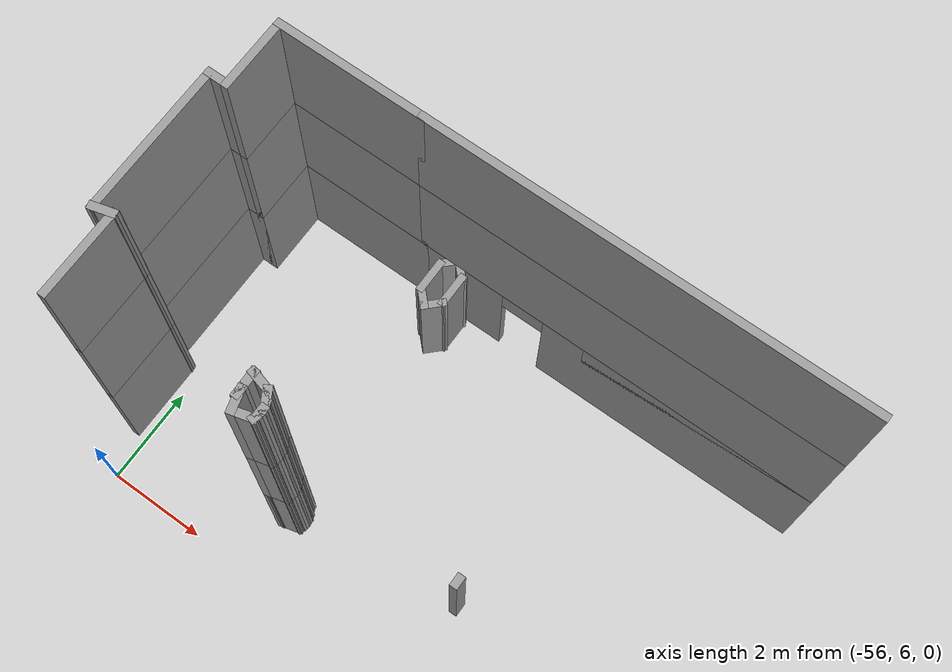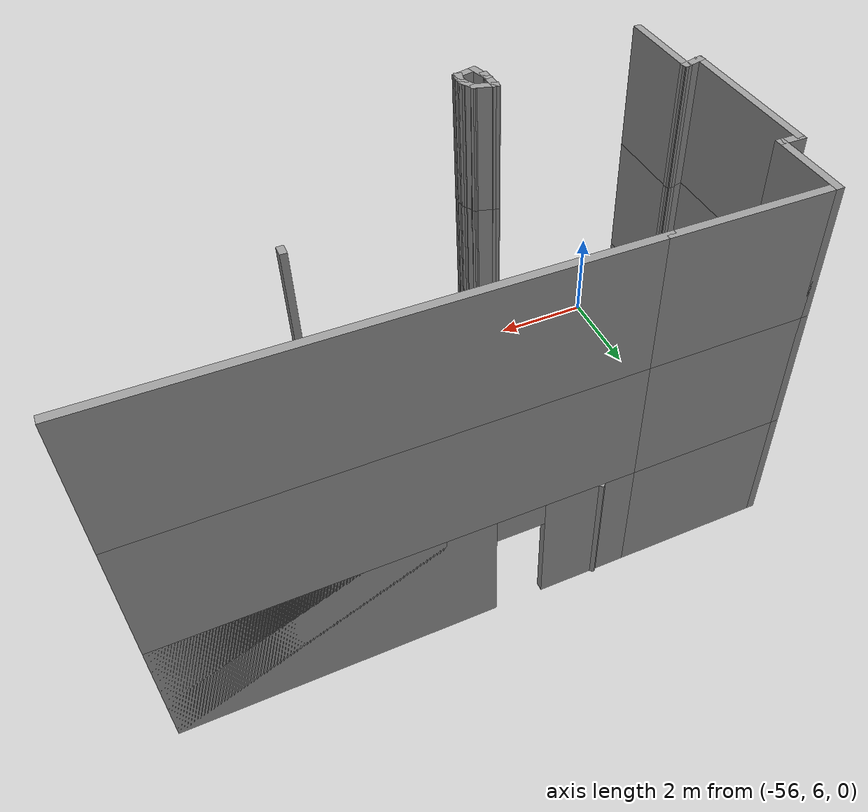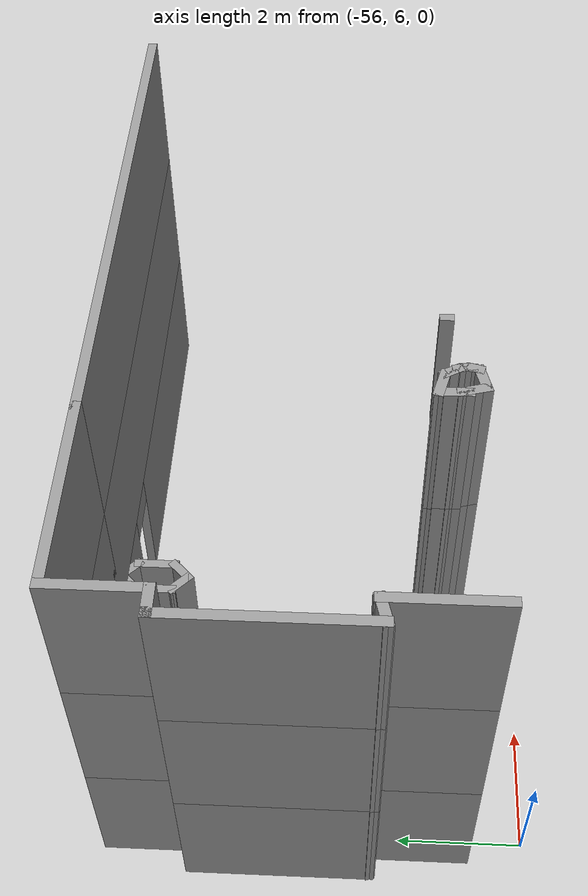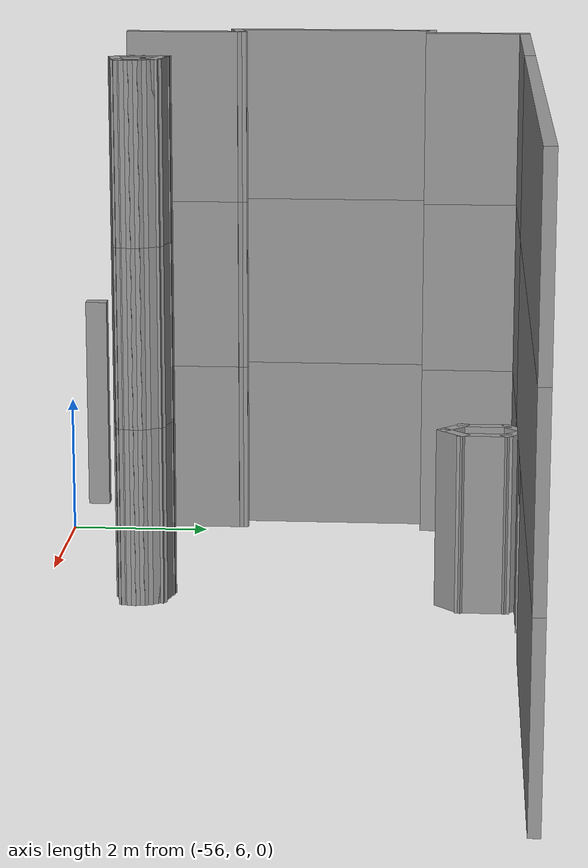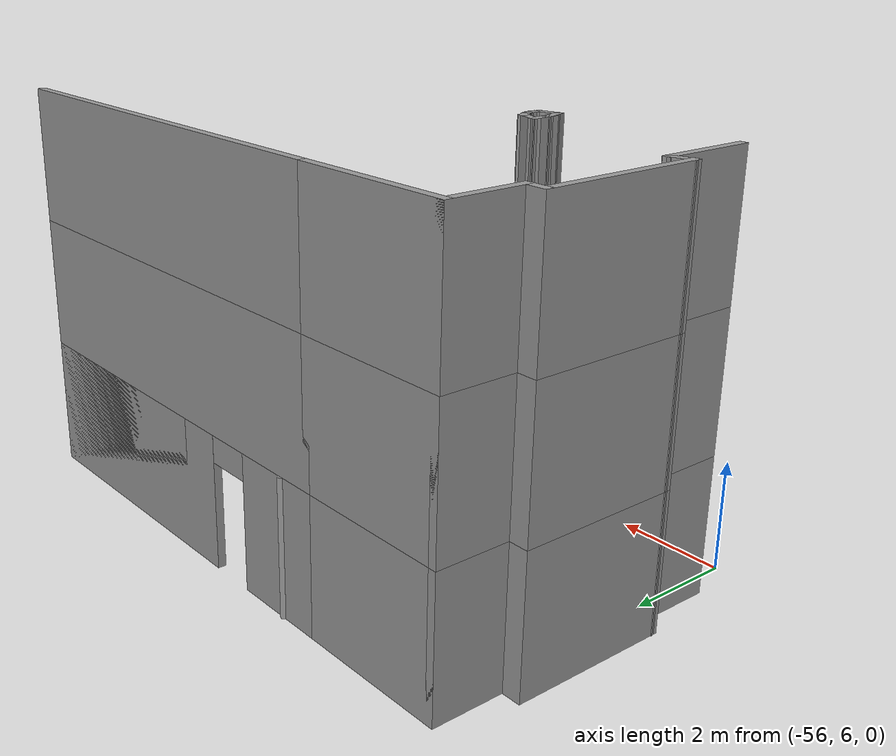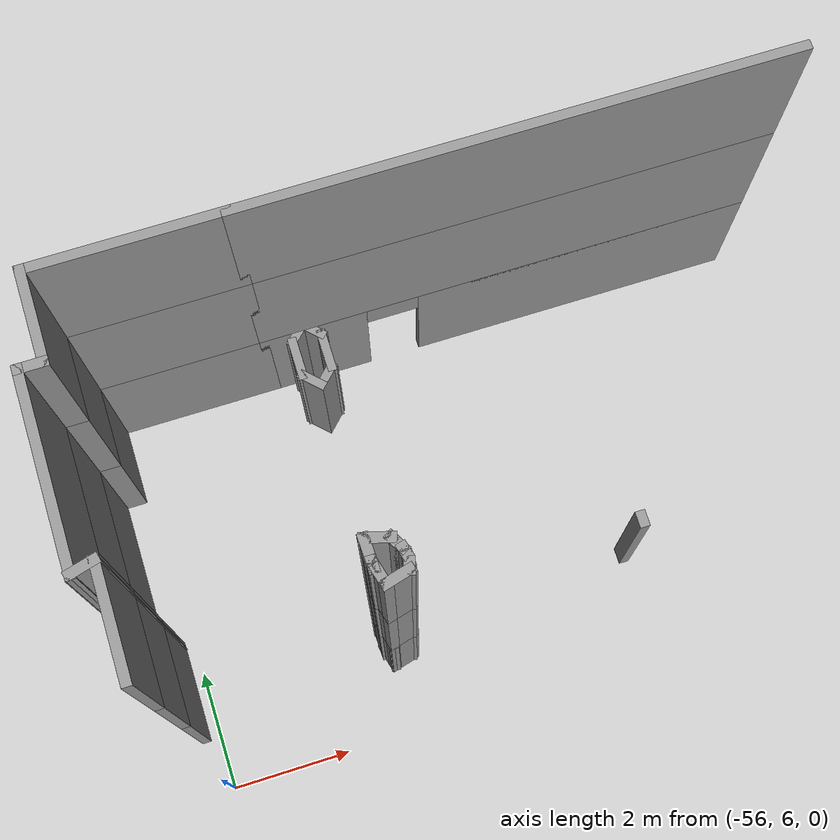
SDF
<sdf version="1.7">
 <model name="mapagazebo">
  <pose>-4.67869 9.01252 0 0 -0 0</pose>
  <link name="Wall_1011">
   <collision name="Wall_1011_Collision">
    <geometry><box><size>0.25 0.15 2.5</size></box></geometry>
    <pose>0 0 1.25 0 -0 0</pose>
   </collision>
   <visual name="Wall_1011_Visual">
    <pose>0 0 1.25 0 -0 0</pose>
    <geometry><box><size>0.25 0.15 2.5</size></box></geometry>
    <material>
     <script><uri>file://media/materials/scripts/gazebo.material</uri><name>Gazebo/Grey</name></script>
     <ambient>1 1 1 1</ambient>
    </material>
    <meta><layer>1</layer></meta>
   </visual>
   <pose>-44.2708 -1.57979 2.5 0 -0 1.5708</pose>
  </link>
  <link name="Wall_1027">
   <collision name="Wall_1027_Collision">
    <geometry><box><size>0.25 0.15 2.5</size></box></geometry>
    <pose>0 0 1.25 0 -0 0</pose>
   </collision>
   <visual name="Wall_1027_Visual">
    <pose>0 0 1.25 0 -0 0</pose>
    <geometry><box><size>0.25 0.15 2.5</size></box></geometry>
    <material>
     <script><uri>file://media/materials/scripts/gazebo.material</uri><name>Gazebo/Grey</name></script>
     <ambient>1 1 1 1</ambient>
    </material>
    <meta><layer>1</layer></meta>
   </visual>
   <pose>-48.2394 -1.57255 2.5 0 -0 1.5708</pose>
  </link>
  <link name="Wall_1028">
   <collision name="Wall_1028_Collision">
    <geometry><box><size>0.25 0.15 2.5</size></box></geometry>
    <pose>0 0 1.25 0 -0 0</pose>
   </collision>
   <visual name="Wall_1028_Visual">
    <pose>0 0 1.25 0 -0 0</pose>
    <geometry><box><size>0.25 0.15 2.5</size></box></geometry>
    <material>
     <script><uri>file://media/materials/scripts/gazebo.material</uri><name>Gazebo/Grey</name></script>
     <ambient>1 1 1 1</ambient>
    </material>
    <meta><layer>1</layer></meta>
   </visual>
   <pose>-48.2394 -1.57255 2.5 0 -0 -1.5708</pose>
  </link>
  <link name="Wall_1029">
   <collision name="Wall_1029_Collision">
    <geometry><box><size>0.25 0.15 2.5</size></box></geometry>
    <pose>0 0 1.25 0 -0 0</pose>
   </collision>
   <visual name="Wall_1029_Visual">
    <pose>0 0 1.25 0 -0 0</pose>
    <geometry><box><size>0.25 0.15 2.5</size></box></geometry>
    <material>
     <script><uri>file://media/materials/scripts/gazebo.material</uri><name>Gazebo/Grey</name></script>
     <ambient>1 1 1 1</ambient>
    </material>
    <meta><layer>1</layer></meta>
   </visual>
   <pose>-48.2394 -1.57255 2.5 0 -0 1.5708</pose>
  </link>
  <link name="Wall_1030">
   <collision name="Wall_1030_Collision">
    <geometry><box><size>0.25 0.15 2.5</size></box></geometry>
    <pose>0 0 1.25 0 -0 0</pose>
   </collision>
   <visual name="Wall_1030_Visual">
    <pose>0 0 1.25 0 -0 0</pose>
    <geometry><box><size>0.25 0.15 2.5</size></box></geometry>
    <material>
     <script><uri>file://media/materials/scripts/gazebo.material</uri><name>Gazebo/Grey</name></script>
     <ambient>1 1 1 1</ambient>
    </material>
    <meta><layer>1</layer></meta>
   </visual>
   <pose>-48.2394 -1.57255 2.5 0 -0 -1.5708</pose>
  </link>
  <link name="Wall_1031">
   <collision name="Wall_1031_Collision">
    <geometry><box><size>0.25 0.15 2.5</size></box></geometry>
    <pose>0 0 1.25 0 -0 0</pose>
   </collision>
   <visual name="Wall_1031_Visual">
    <pose>0 0 1.25 0 -0 0</pose>
    <geometry><box><size>0.25 0.15 2.5</size></box></geometry>
    <material>
     <script><uri>file://media/materials/scripts/gazebo.material</uri><name>Gazebo/Grey</name></script>
     <ambient>1 1 1 1</ambient>
    </material>
    <meta><layer>1</layer></meta>
   </visual>
   <pose>-48.2394 -1.57255 2.5 0 -0 1.5708</pose>
  </link>
  <link name="Wall_1032">
   <collision name="Wall_1032_Collision">
    <geometry><box><size>0.25 0.15 2.5</size></box></geometry>
    <pose>0 0 1.25 0 -0 0</pose>
   </collision>
   <visual name="Wall_1032_Visual">
    <pose>0 0 1.25 0 -0 0</pose>
    <geometry><box><size>0.25 0.15 2.5</size></box></geometry>
    <material>
     <script><uri>file://media/materials/scripts/gazebo.material</uri><name>Gazebo/Grey</name></script>
     <ambient>1 1 1 1</ambient>
    </material>
    <meta><layer>1</layer></meta>
   </visual>
   <pose>-48.2394 -1.57255 2.5 0 -0 -1.5708</pose>
  </link>
  <link name="Wall_1033">
   <collision name="Wall_1033_Collision">
    <geometry><box><size>0.25 0.15 2.5</size></box></geometry>
    <pose>0 0 1.25 0 -0 0</pose>
   </collision>
   <visual name="Wall_1033_Visual">
    <pose>0 0 1.25 0 -0 0</pose>
    <geometry><box><size>0.25 0.15 2.5</size></box></geometry>
    <material>
     <script><uri>file://media/materials/scripts/gazebo.material</uri><name>Gazebo/Grey</name></script>
     <ambient>1 1 1 1</ambient>
    </material>
    <meta><layer>1</layer></meta>
   </visual>
   <pose>-48.2394 -1.57255 2.5 0 -0 1.5708</pose>
  </link>
  <link name="Wall_1034">
   <collision name="Wall_1034_Collision">
    <geometry><box><size>0.25 0.15 2.5</size></box></geometry>
    <pose>0 0 1.25 0 -0 0</pose>
   </collision>
   <visual name="Wall_1034_Visual">
    <pose>0 0 1.25 0 -0 0</pose>
    <geometry><box><size>0.25 0.15 2.5</size></box></geometry>
    <material>
     <script><uri>file://media/materials/scripts/gazebo.material</uri><name>Gazebo/Grey</name></script>
     <ambient>1 1 1 1</ambient>
    </material>
    <meta><layer>1</layer></meta>
   </visual>
   <pose>-48.2394 -1.57255 2.5 0 -0 -1.5708</pose>
  </link>
  <link name="Wall_1035">
   <collision name="Wall_1035_Collision">
    <geometry><box><size>0.5 0.15 2.5</size></box></geometry>
    <pose>0 0 1.25 0 -0 0</pose>
   </collision>
   <visual name="Wall_1035_Visual">
    <pose>0 0 1.25 0 -0 0</pose>
    <geometry><box><size>0.5 0.15 2.5</size></box></geometry>
    <material>
     <script><uri>file://media/materials/scripts/gazebo.material</uri><name>Gazebo/Grey</name></script>
     <ambient>1 1 1 1</ambient>
    </material>
    <meta><layer>1</layer></meta>
   </visual>
   <pose>-48.1941 -1.69159 2.5 0 -0 -1.309</pose>
  </link>
  <link name="Wall_1037">
   <collision name="Wall_1037_Collision">
    <geometry><box><size>0.5 0.15 2.5</size></box></geometry>
    <pose>0 0 1.25 0 -0 0</pose>
   </collision>
   <visual name="Wall_1037_Visual">
    <pose>0 0 1.25 0 -0 0</pose>
    <geometry><box><size>0.5 0.15 2.5</size></box></geometry>
    <material>
     <script><uri>file://media/materials/scripts/gazebo.material</uri><name>Gazebo/Grey</name></script>
     <ambient>1 1 1 1</ambient>
    </material>
    <meta><layer>1</layer></meta>
   </visual>
   <pose>-47.9798 -1.81533 2.5 0 -0 0.261799</pose>
  </link>
  <link name="Wall_1038">
   <collision name="Wall_1038_Collision">
    <geometry><box><size>0.25 0.15 2.5</size></box></geometry>
    <pose>0 0 1.25 0 -0 0</pose>
   </collision>
   <visual name="Wall_1038_Visual">
    <pose>0 0 1.25 0 -0 0</pose>
    <geometry><box><size>0.25 0.15 2.5</size></box></geometry>
    <material>
     <script><uri>file://media/materials/scripts/gazebo.material</uri><name>Gazebo/Grey</name></script>
     <ambient>1 1 1 1</ambient>
    </material>
    <meta><layer>1</layer></meta>
   </visual>
   <pose>-47.7978 -1.72174 2.5 0 -0 1.309</pose>
  </link>
  <link name="Wall_1039">
   <collision name="Wall_1039_Collision">
    <geometry><box><size>0.25 0.15 2.5</size></box></geometry>
    <pose>0 0 1.25 0 -0 0</pose>
   </collision>
   <visual name="Wall_1039_Visual">
    <pose>0 0 1.25 0 -0 0</pose>
    <geometry><box><size>0.25 0.15 2.5</size></box></geometry>
    <material>
     <script><uri>file://media/materials/scripts/gazebo.material</uri><name>Gazebo/Grey</name></script>
     <ambient>1 1 1 1</ambient>
    </material>
    <meta><layer>1</layer></meta>
   </visual>
   <pose>-47.7848 -1.62344 2.5 0 -0 1.5708</pose>
  </link>
  <link name="Wall_1040">
   <collision name="Wall_1040_Collision">
    <geometry><box><size>0.25 0.15 2.5</size></box></geometry>
    <pose>0 0 1.25 0 -0 0</pose>
   </collision>
   <visual name="Wall_1040_Visual">
    <pose>0 0 1.25 0 -0 0</pose>
    <geometry><box><size>0.25 0.15 2.5</size></box></geometry>
    <material>
     <script><uri>file://media/materials/scripts/gazebo.material</uri><name>Gazebo/Grey</name></script>
     <ambient>1 1 1 1</ambient>
    </material>
    <meta><layer>1</layer></meta>
   </visual>
   <pose>-47.7978 -1.52515 2.5 0 -0 1.8326</pose>
  </link>
  <link name="Wall_1041">
   <collision name="Wall_1041_Collision">
    <geometry><box><size>0.25 0.15 2.5</size></box></geometry>
    <pose>0 0 1.25 0 -0 0</pose>
   </collision>
   <visual name="Wall_1041_Visual">
    <pose>0 0 1.25 0 -0 0</pose>
    <geometry><box><size>0.25 0.15 2.5</size></box></geometry>
    <material>
     <script><uri>file://media/materials/scripts/gazebo.material</uri><name>Gazebo/Grey</name></script>
     <ambient>1 1 1 1</ambient>
    </material>
    <meta><layer>1</layer></meta>
   </visual>
   <pose>-47.8357 -1.43355 2.5 0 -0 2.0944</pose>
  </link>
  <link name="Wall_1042">
   <collision name="Wall_1042_Collision">
    <geometry><box><size>0.25 0.15 2.5</size></box></geometry>
    <pose>0 0 1.25 0 -0 0</pose>
   </collision>
   <visual name="Wall_1042_Visual">
    <pose>0 0 1.25 0 -0 0</pose>
    <geometry><box><size>0.25 0.15 2.5</size></box></geometry>
    <material>
     <script><uri>file://media/materials/scripts/gazebo.material</uri><name>Gazebo/Grey</name></script>
     <ambient>1 1 1 1</ambient>
    </material>
    <meta><layer>1</layer></meta>
   </visual>
   <pose>-47.8857 -1.34695 2.5 0 -0 2.0944</pose>
  </link>
  <link name="Wall_1043">
   <collision name="Wall_1043_Collision">
    <geometry><box><size>0.5 0.15 2.5</size></box></geometry>
    <pose>0 0 1.25 0 -0 0</pose>
   </collision>
   <visual name="Wall_1043_Visual">
    <pose>0 0 1.25 0 -0 0</pose>
    <geometry><box><size>0.5 0.15 2.5</size></box></geometry>
    <material>
     <script><uri>file://media/materials/scripts/gazebo.material</uri><name>Gazebo/Grey</name></script>
     <ambient>1 1 1 1</ambient>
    </material>
    <meta><layer>1</layer></meta>
   </visual>
   <pose>-48.0798 -1.25835 2.5 0 -0 2.87979</pose>
  </link>
  <link name="Wall_1044">
   <collision name="Wall_1044_Collision">
    <geometry><box><size>0.459633 0.15 2.5</size></box></geometry>
    <pose>0 0 1.25 0 -0 0</pose>
   </collision>
   <visual name="Wall_1044_Visual">
    <pose>0 0 1.25 0 -0 0</pose>
    <geometry><box><size>0.459633 0.15 2.5</size></box></geometry>
    <material>
     <script><uri>file://media/materials/scripts/gazebo.material</uri><name>Gazebo/Grey</name></script>
     <ambient>1 1 1 1</ambient>
    </material>
    <meta><layer>1</layer></meta>
   </visual>
   <pose>-48.2441 -1.3678 2.5 0 -0 -1.54039</pose>
  </link>
  <link name="Wall_113">
   <collision name="Wall_113_Collision">
    <geometry><box><size>1.75 0.15 2.5</size></box></geometry>
    <pose>0 0 1.25 0 -0 0</pose>
   </collision>
   <visual name="Wall_113_Visual">
    <pose>0 0 1.25 0 -0 0</pose>
    <geometry><box><size>1.75 0.15 2.5</size></box></geometry>
    <material>
     <script><uri>file://media/materials/scripts/gazebo.material</uri><name>Gazebo/Grey</name></script>
     <ambient>1 1 1 1</ambient>
    </material>
    <meta><layer>0</layer></meta>
   </visual>
   <pose>-51.5749 -1.26611 0 0 -0 1.5708</pose>
  </link>
  <link name="Wall_114">
   <collision name="Wall_114_Collision">
    <geometry><box><size>0.5 0.15 2.5</size></box></geometry>
    <pose>0 0 1.25 0 -0 0</pose>
   </collision>
   <visual name="Wall_114_Visual">
    <pose>0 0 1.25 0 -0 0</pose>
    <geometry><box><size>0.5 0.15 2.5</size></box></geometry>
    <material>
     <script><uri>file://media/materials/scripts/gazebo.material</uri><name>Gazebo/Grey</name></script>
     <ambient>1 1 1 1</ambient>
    </material>
    <meta><layer>0</layer></meta>
   </visual>
   <pose>-51.7439 -0.511398 0 0 -0 -2.87979</pose>
  </link>
  <link name="Wall_115">
   <collision name="Wall_115_Collision">
    <geometry><box><size>3 0.15 2.5</size></box></geometry>
    <pose>0 0 1.25 0 -0 0</pose>
   </collision>
   <visual name="Wall_115_Visual">
    <pose>0 0 1.25 0 -0 0</pose>
    <geometry><box><size>3 0.15 2.5</size></box></geometry>
    <material>
     <script><uri>file://media/materials/scripts/gazebo.material</uri><name>Gazebo/Grey</name></script>
     <ambient>1 1 1 1</ambient>
    </material>
    <meta><layer>0</layer></meta>
   </visual>
   <pose>-51.9129 0.868308 0 0 -0 1.5708</pose>
  </link>
  <link name="Wall_116">
   <collision name="Wall_116_Collision">
    <geometry><box><size>0.5 0.15 2.5</size></box></geometry>
    <pose>0 0 1.25 0 -0 0</pose>
   </collision>
   <visual name="Wall_116_Visual">
    <pose>0 0 1.25 0 -0 0</pose>
    <geometry><box><size>0.5 0.15 2.5</size></box></geometry>
    <material>
     <script><uri>file://media/materials/scripts/gazebo.material</uri><name>Gazebo/Grey</name></script>
     <ambient>1 1 1 1</ambient>
    </material>
    <meta><layer>0</layer></meta>
   </visual>
   <pose>-51.7379 2.29331 0 0 -0 0</pose>
  </link>
  <link name="Wall_117">
   <collision name="Wall_117_Collision">
    <geometry><box><size>1.5 0.15 2.5</size></box></geometry>
    <pose>0 0 1.25 0 -0 0</pose>
   </collision>
   <visual name="Wall_117_Visual">
    <pose>0 0 1.25 0 -0 0</pose>
    <geometry><box><size>1.5 0.15 2.5</size></box></geometry>
    <material>
     <script><uri>file://media/materials/scripts/gazebo.material</uri><name>Gazebo/Grey</name></script>
     <ambient>1 1 1 1</ambient>
    </material>
    <meta><layer>0</layer></meta>
   </visual>
   <pose>-51.5629 2.96831 0 0 -0 1.5708</pose>
  </link>
  <link name="Wall_118">
   <collision name="Wall_118_Collision">
    <geometry><box><size>3 0.15 2.5</size></box></geometry>
    <pose>0 0 1.25 0 -0 0</pose>
   </collision>
   <visual name="Wall_118_Visual">
    <pose>0 0 1.25 0 -0 0</pose>
    <geometry><box><size>3 0.15 2.5</size></box></geometry>
    <material>
     <script><uri>file://media/materials/scripts/gazebo.material</uri><name>Gazebo/Grey</name></script>
     <ambient>1 1 1 1</ambient>
    </material>
    <meta><layer>0</layer></meta>
   </visual>
   <pose>-50.1379 3.64331 0 0 -0 0</pose>
  </link>
  <link name="Wall_119">
   <pose>-44.5379 3.64331 0 0 -0 0</pose>
   <visual name="Wall_119_Visual_0">
    <pose>-3.32413 0 1.25 0 -0 0</pose>
    <geometry><box><size>1.85174 0.15 2.5</size></box></geometry>
    <material>
     <script><uri>file://media/materials/scripts/gazebo.material</uri><name>Gazebo/Grey</name></script>
     <ambient>1 1 1 1</ambient>
    </material>
    <meta><layer>0</layer></meta>
   </visual>
   <collision name="Wall_119_Collision_0">
    <geometry><box><size>1.85174 0.15 2.5</size></box></geometry>
    <pose>-3.32413 0 1.25 0 -0 0</pose>
   </collision>
   <visual name="Wall_119_Visual_1">
    <pose>1.37587 0 1.25 0 -0 0</pose>
    <geometry><box><size>5.74826 0.15 2.5</size></box></geometry>
    <material>
     <script><uri>file://media/materials/scripts/gazebo.material</uri><name>Gazebo/Grey</name></script>
     <ambient>1 1 1 1</ambient>
    </material>
    <meta><layer>0</layer></meta>
   </visual>
   <collision name="Wall_119_Collision_1">
    <geometry><box><size>5.74826 0.15 2.5</size></box></geometry>
    <pose>1.37587 0 1.25 0 -0 0</pose>
   </collision>
   <visual name="Wall_119_Visual_2">
    <pose>1.82534 0 1.25 0 -0 0</pose>
    <geometry><box><size>4.84932 0.15 2.5</size></box></geometry>
    <material>
     <script><uri>file://media/materials/scripts/gazebo.material</uri><name>Gazebo/Grey</name></script>
     <ambient>1 1 1 1</ambient>
    </material>
    <meta><layer>0</layer></meta>
   </visual>
   <collision name="Wall_119_Collision_2">
    <geometry><box><size>4.84932 0.15 2.5</size></box></geometry>
    <pose>1.82534 0 1.25 0 -0 0</pose>
   </collision>
   <visual name="Wall_119_Visual_3">
    <pose>-1.94879 0 2.25 0 -0 0</pose>
    <geometry><box><size>0.898933 0.15 0.5</size></box></geometry>
    <material>
     <script><uri>file://media/materials/scripts/gazebo.material</uri><name>Gazebo/Grey</name></script>
     <ambient>1 1 1 1</ambient>
    </material>
    <meta><layer>0</layer></meta>
   </visual>
   <collision name="Wall_119_Collision_3">
    <geometry><box><size>0.898933 0.15 0.5</size></box></geometry>
    <pose>-1.94879 0 2.25 0 -0 0</pose>
   </collision>
  </link>
  <link name="Wall_1481">
   <collision name="Wall_1481_Collision">
    <geometry><box><size>1.75 0.15 2.5</size></box></geometry>
    <pose>0 0 1.25 0 -0 0</pose>
   </collision>
   <visual name="Wall_1481_Visual">
    <pose>0 0 1.25 0 -0 0</pose>
    <geometry><box><size>1.75 0.15 2.5</size></box></geometry>
    <material>
     <script><uri>file://media/materials/scripts/gazebo.material</uri><name>Gazebo/Grey</name></script>
     <ambient>1 1 1 1</ambient>
    </material>
    <meta><layer>2</layer></meta>
   </visual>
   <pose>-51.5749 -1.26611 5 0 -0 1.5708</pose>
  </link>
  <link name="Wall_1482">
   <collision name="Wall_1482_Collision">
    <geometry><box><size>0.5 0.15 2.5</size></box></geometry>
    <pose>0 0 1.25 0 -0 0</pose>
   </collision>
   <visual name="Wall_1482_Visual">
    <pose>0 0 1.25 0 -0 0</pose>
    <geometry><box><size>0.5 0.15 2.5</size></box></geometry>
    <material>
     <script><uri>file://media/materials/scripts/gazebo.material</uri><name>Gazebo/Grey</name></script>
     <ambient>1 1 1 1</ambient>
    </material>
    <meta><layer>2</layer></meta>
   </visual>
   <pose>-51.7439 -0.511398 5 0 -0 -2.87979</pose>
  </link>
  <link name="Wall_1483">
   <collision name="Wall_1483_Collision">
    <geometry><box><size>3 0.15 2.5</size></box></geometry>
    <pose>0 0 1.25 0 -0 0</pose>
   </collision>
   <visual name="Wall_1483_Visual">
    <pose>0 0 1.25 0 -0 0</pose>
    <geometry><box><size>3 0.15 2.5</size></box></geometry>
    <material>
     <script><uri>file://media/materials/scripts/gazebo.material</uri><name>Gazebo/Grey</name></script>
     <ambient>1 1 1 1</ambient>
    </material>
    <meta><layer>2</layer></meta>
   </visual>
   <pose>-51.9129 0.868308 5 0 -0 1.5708</pose>
  </link>
  <link name="Wall_1484">
   <collision name="Wall_1484_Collision">
    <geometry><box><size>0.5 0.15 2.5</size></box></geometry>
    <pose>0 0 1.25 0 -0 0</pose>
   </collision>
   <visual name="Wall_1484_Visual">
    <pose>0 0 1.25 0 -0 0</pose>
    <geometry><box><size>0.5 0.15 2.5</size></box></geometry>
    <material>
     <script><uri>file://media/materials/scripts/gazebo.material</uri><name>Gazebo/Grey</name></script>
     <ambient>1 1 1 1</ambient>
    </material>
    <meta><layer>2</layer></meta>
   </visual>
   <pose>-51.7379 2.29331 5 0 -0 0</pose>
  </link>
  <link name="Wall_1485">
   <collision name="Wall_1485_Collision">
    <geometry><box><size>1.5 0.15 2.5</size></box></geometry>
    <pose>0 0 1.25 0 -0 0</pose>
   </collision>
   <visual name="Wall_1485_Visual">
    <pose>0 0 1.25 0 -0 0</pose>
    <geometry><box><size>1.5 0.15 2.5</size></box></geometry>
    <material>
     <script><uri>file://media/materials/scripts/gazebo.material</uri><name>Gazebo/Grey</name></script>
     <ambient>1 1 1 1</ambient>
    </material>
    <meta><layer>2</layer></meta>
   </visual>
   <pose>-51.5629 2.96831 5 0 -0 1.5708</pose>
  </link>
  <link name="Wall_1486">
   <collision name="Wall_1486_Collision">
    <geometry><box><size>3 0.15 2.5</size></box></geometry>
    <pose>0 0 1.25 0 -0 0</pose>
   </collision>
   <visual name="Wall_1486_Visual">
    <pose>0 0 1.25 0 -0 0</pose>
    <geometry><box><size>3 0.15 2.5</size></box></geometry>
    <material>
     <script><uri>file://media/materials/scripts/gazebo.material</uri><name>Gazebo/Grey</name></script>
     <ambient>1 1 1 1</ambient>
    </material>
    <meta><layer>2</layer></meta>
   </visual>
   <pose>-50.1379 3.64331 5 0 -0 0</pose>
  </link>
  <link name="Wall_1487">
   <collision name="Wall_1487_Collision">
    <geometry><box><size>8.5 0.15 2.5</size></box></geometry>
    <pose>0 0 1.25 0 -0 0</pose>
   </collision>
   <visual name="Wall_1487_Visual">
    <pose>0 0 1.25 0 -0 0</pose>
    <geometry><box><size>8.5 0.15 2.5</size></box></geometry>
    <material>
     <script><uri>file://media/materials/scripts/gazebo.material</uri><name>Gazebo/Grey</name></script>
     <ambient>1 1 1 1</ambient>
    </material>
    <meta><layer>2</layer></meta>
   </visual>
   <pose>-44.5379 3.64331 5 0 -0 0</pose>
  </link>
  <link name="Wall_1651">
   <collision name="Wall_1651_Collision">
    <geometry><box><size>0.25 0.15 2.5</size></box></geometry>
    <pose>0 0 1.25 0 -0 0</pose>
   </collision>
   <visual name="Wall_1651_Visual">
    <pose>0 0 1.25 0 -0 0</pose>
    <geometry><box><size>0.25 0.15 2.5</size></box></geometry>
    <material>
     <script><uri>file://media/materials/scripts/gazebo.material</uri><name>Gazebo/Grey</name></script>
     <ambient>1 1 1 1</ambient>
    </material>
    <meta><layer>2</layer></meta>
   </visual>
   <pose>-48.2394 -1.57255 5 0 -0 1.5708</pose>
  </link>
  <link name="Wall_1652">
   <collision name="Wall_1652_Collision">
    <geometry><box><size>0.25 0.15 2.5</size></box></geometry>
    <pose>0 0 1.25 0 -0 0</pose>
   </collision>
   <visual name="Wall_1652_Visual">
    <pose>0 0 1.25 0 -0 0</pose>
    <geometry><box><size>0.25 0.15 2.5</size></box></geometry>
    <material>
     <script><uri>file://media/materials/scripts/gazebo.material</uri><name>Gazebo/Grey</name></script>
     <ambient>1 1 1 1</ambient>
    </material>
    <meta><layer>2</layer></meta>
   </visual>
   <pose>-48.2394 -1.57255 5 0 -0 -1.5708</pose>
  </link>
  <link name="Wall_1653">
   <collision name="Wall_1653_Collision">
    <geometry><box><size>0.25 0.15 2.5</size></box></geometry>
    <pose>0 0 1.25 0 -0 0</pose>
   </collision>
   <visual name="Wall_1653_Visual">
    <pose>0 0 1.25 0 -0 0</pose>
    <geometry><box><size>0.25 0.15 2.5</size></box></geometry>
    <material>
     <script><uri>file://media/materials/scripts/gazebo.material</uri><name>Gazebo/Grey</name></script>
     <ambient>1 1 1 1</ambient>
    </material>
    <meta><layer>2</layer></meta>
   </visual>
   <pose>-48.2394 -1.57255 5 0 -0 1.5708</pose>
  </link>
  <link name="Wall_1654">
   <collision name="Wall_1654_Collision">
    <geometry><box><size>0.25 0.15 2.5</size></box></geometry>
    <pose>0 0 1.25 0 -0 0</pose>
   </collision>
   <visual name="Wall_1654_Visual">
    <pose>0 0 1.25 0 -0 0</pose>
    <geometry><box><size>0.25 0.15 2.5</size></box></geometry>
    <material>
     <script><uri>file://media/materials/scripts/gazebo.material</uri><name>Gazebo/Grey</name></script>
     <ambient>1 1 1 1</ambient>
    </material>
    <meta><layer>2</layer></meta>
   </visual>
   <pose>-48.2394 -1.57255 5 0 -0 -1.5708</pose>
  </link>
  <link name="Wall_1655">
   <collision name="Wall_1655_Collision">
    <geometry><box><size>0.25 0.15 2.5</size></box></geometry>
    <pose>0 0 1.25 0 -0 0</pose>
   </collision>
   <visual name="Wall_1655_Visual">
    <pose>0 0 1.25 0 -0 0</pose>
    <geometry><box><size>0.25 0.15 2.5</size></box></geometry>
    <material>
     <script><uri>file://media/materials/scripts/gazebo.material</uri><name>Gazebo/Grey</name></script>
     <ambient>1 1 1 1</ambient>
    </material>
    <meta><layer>2</layer></meta>
   </visual>
   <pose>-48.2394 -1.57255 5 0 -0 1.5708</pose>
  </link>
  <link name="Wall_1656">
   <collision name="Wall_1656_Collision">
    <geometry><box><size>0.25 0.15 2.5</size></box></geometry>
    <pose>0 0 1.25 0 -0 0</pose>
   </collision>
   <visual name="Wall_1656_Visual">
    <pose>0 0 1.25 0 -0 0</pose>
    <geometry><box><size>0.25 0.15 2.5</size></box></geometry>
    <material>
     <script><uri>file://media/materials/scripts/gazebo.material</uri><name>Gazebo/Grey</name></script>
     <ambient>1 1 1 1</ambient>
    </material>
    <meta><layer>2</layer></meta>
   </visual>
   <pose>-48.2394 -1.57255 5 0 -0 -1.5708</pose>
  </link>
  <link name="Wall_1657">
   <collision name="Wall_1657_Collision">
    <geometry><box><size>0.25 0.15 2.5</size></box></geometry>
    <pose>0 0 1.25 0 -0 0</pose>
   </collision>
   <visual name="Wall_1657_Visual">
    <pose>0 0 1.25 0 -0 0</pose>
    <geometry><box><size>0.25 0.15 2.5</size></box></geometry>
    <material>
     <script><uri>file://media/materials/scripts/gazebo.material</uri><name>Gazebo/Grey</name></script>
     <ambient>1 1 1 1</ambient>
    </material>
    <meta><layer>2</layer></meta>
   </visual>
   <pose>-48.2394 -1.57255 5 0 -0 1.5708</pose>
  </link>
  <link name="Wall_1658">
   <collision name="Wall_1658_Collision">
    <geometry><box><size>0.25 0.15 2.5</size></box></geometry>
    <pose>0 0 1.25 0 -0 0</pose>
   </collision>
   <visual name="Wall_1658_Visual">
    <pose>0 0 1.25 0 -0 0</pose>
    <geometry><box><size>0.25 0.15 2.5</size></box></geometry>
    <material>
     <script><uri>file://media/materials/scripts/gazebo.material</uri><name>Gazebo/Grey</name></script>
     <ambient>1 1 1 1</ambient>
    </material>
    <meta><layer>2</layer></meta>
   </visual>
   <pose>-48.2394 -1.57255 5 0 -0 -1.5708</pose>
  </link>
  <link name="Wall_1659">
   <collision name="Wall_1659_Collision">
    <geometry><box><size>0.5 0.15 2.5</size></box></geometry>
    <pose>0 0 1.25 0 -0 0</pose>
   </collision>
   <visual name="Wall_1659_Visual">
    <pose>0 0 1.25 0 -0 0</pose>
    <geometry><box><size>0.5 0.15 2.5</size></box></geometry>
    <material>
     <script><uri>file://media/materials/scripts/gazebo.material</uri><name>Gazebo/Grey</name></script>
     <ambient>1 1 1 1</ambient>
    </material>
    <meta><layer>2</layer></meta>
   </visual>
   <pose>-48.1941 -1.69159 5 0 -0 -1.309</pose>
  </link>
  <link name="Wall_1661">
   <collision name="Wall_1661_Collision">
    <geometry><box><size>0.5 0.15 2.5</size></box></geometry>
    <pose>0 0 1.25 0 -0 0</pose>
   </collision>
   <visual name="Wall_1661_Visual">
    <pose>0 0 1.25 0 -0 0</pose>
    <geometry><box><size>0.5 0.15 2.5</size></box></geometry>
    <material>
     <script><uri>file://media/materials/scripts/gazebo.material</uri><name>Gazebo/Grey</name></script>
     <ambient>1 1 1 1</ambient>
    </material>
    <meta><layer>2</layer></meta>
   </visual>
   <pose>-47.9798 -1.81533 5 0 -0 0.261799</pose>
  </link>
  <link name="Wall_1662">
   <collision name="Wall_1662_Collision">
    <geometry><box><size>0.25 0.15 2.5</size></box></geometry>
    <pose>0 0 1.25 0 -0 0</pose>
   </collision>
   <visual name="Wall_1662_Visual">
    <pose>0 0 1.25 0 -0 0</pose>
    <geometry><box><size>0.25 0.15 2.5</size></box></geometry>
    <material>
     <script><uri>file://media/materials/scripts/gazebo.material</uri><name>Gazebo/Grey</name></script>
     <ambient>1 1 1 1</ambient>
    </material>
    <meta><layer>2</layer></meta>
   </visual>
   <pose>-47.7978 -1.72174 5 0 -0 1.309</pose>
  </link>
  <link name="Wall_1663">
   <collision name="Wall_1663_Collision">
    <geometry><box><size>0.25 0.15 2.5</size></box></geometry>
    <pose>0 0 1.25 0 -0 0</pose>
   </collision>
   <visual name="Wall_1663_Visual">
    <pose>0 0 1.25 0 -0 0</pose>
    <geometry><box><size>0.25 0.15 2.5</size></box></geometry>
    <material>
     <script><uri>file://media/materials/scripts/gazebo.material</uri><name>Gazebo/Grey</name></script>
     <ambient>1 1 1 1</ambient>
    </material>
    <meta><layer>2</layer></meta>
   </visual>
   <pose>-47.7848 -1.62344 5 0 -0 1.5708</pose>
  </link>
  <link name="Wall_1664">
   <collision name="Wall_1664_Collision">
    <geometry><box><size>0.25 0.15 2.5</size></box></geometry>
    <pose>0 0 1.25 0 -0 0</pose>
   </collision>
   <visual name="Wall_1664_Visual">
    <pose>0 0 1.25 0 -0 0</pose>
    <geometry><box><size>0.25 0.15 2.5</size></box></geometry>
    <material>
     <script><uri>file://media/materials/scripts/gazebo.material</uri><name>Gazebo/Grey</name></script>
     <ambient>1 1 1 1</ambient>
    </material>
    <meta><layer>2</layer></meta>
   </visual>
   <pose>-47.7978 -1.52515 5 0 -0 1.8326</pose>
  </link>
  <link name="Wall_1665">
   <collision name="Wall_1665_Collision">
    <geometry><box><size>0.25 0.15 2.5</size></box></geometry>
    <pose>0 0 1.25 0 -0 0</pose>
   </collision>
   <visual name="Wall_1665_Visual">
    <pose>0 0 1.25 0 -0 0</pose>
    <geometry><box><size>0.25 0.15 2.5</size></box></geometry>
    <material>
     <script><uri>file://media/materials/scripts/gazebo.material</uri><name>Gazebo/Grey</name></script>
     <ambient>1 1 1 1</ambient>
    </material>
    <meta><layer>2</layer></meta>
   </visual>
   <pose>-47.8357 -1.43355 5 0 -0 2.0944</pose>
  </link>
  <link name="Wall_1666">
   <collision name="Wall_1666_Collision">
    <geometry><box><size>0.25 0.15 2.5</size></box></geometry>
    <pose>0 0 1.25 0 -0 0</pose>
   </collision>
   <visual name="Wall_1666_Visual">
    <pose>0 0 1.25 0 -0 0</pose>
    <geometry><box><size>0.25 0.15 2.5</size></box></geometry>
    <material>
     <script><uri>file://media/materials/scripts/gazebo.material</uri><name>Gazebo/Grey</name></script>
     <ambient>1 1 1 1</ambient>
    </material>
    <meta><layer>2</layer></meta>
   </visual>
   <pose>-47.8857 -1.34695 5 0 -0 2.0944</pose>
  </link>
  <link name="Wall_1667">
   <collision name="Wall_1667_Collision">
    <geometry><box><size>0.5 0.15 2.5</size></box></geometry>
    <pose>0 0 1.25 0 -0 0</pose>
   </collision>
   <visual name="Wall_1667_Visual">
    <pose>0 0 1.25 0 -0 0</pose>
    <geometry><box><size>0.5 0.15 2.5</size></box></geometry>
    <material>
     <script><uri>file://media/materials/scripts/gazebo.material</uri><name>Gazebo/Grey</name></script>
     <ambient>1 1 1 1</ambient>
    </material>
    <meta><layer>2</layer></meta>
   </visual>
   <pose>-48.0798 -1.25835 5 0 -0 2.87979</pose>
  </link>
  <link name="Wall_1668">
   <collision name="Wall_1668_Collision">
    <geometry><box><size>0.459633 0.15 2.5</size></box></geometry>
    <pose>0 0 1.25 0 -0 0</pose>
   </collision>
   <visual name="Wall_1668_Visual">
    <pose>0 0 1.25 0 -0 0</pose>
    <geometry><box><size>0.459633 0.15 2.5</size></box></geometry>
    <material>
     <script><uri>file://media/materials/scripts/gazebo.material</uri><name>Gazebo/Grey</name></script>
     <ambient>1 1 1 1</ambient>
    </material>
    <meta><layer>2</layer></meta>
   </visual>
   <pose>-48.2441 -1.3678 5 0 -0 -1.54039</pose>
  </link>
  <link name="Wall_2177">
   <collision name="Wall_2177_Collision">
    <geometry><box><size>0.75 0.15 2.5</size></box></geometry>
    <pose>0 0 1.25 0 -0 0</pose>
   </collision>
   <visual name="Wall_2177_Visual">
    <pose>0 0 1.25 0 -0 0</pose>
    <geometry><box><size>0.75 0.15 2.5</size></box></geometry>
    <material>
     <script><uri>file://media/materials/scripts/gazebo.material</uri><name>Gazebo/Grey</name></script>
     <ambient>1 1 1 1</ambient>
    </material>
    <meta><layer>0</layer></meta>
   </visual>
   <pose>-48.2591 3.12668 0 0 -0 -1.5708</pose>
  </link>
  <link name="Wall_2178">
   <collision name="Wall_2178_Collision">
    <geometry><box><size>0.5 0.15 2.5</size></box></geometry>
    <pose>0 0 1.25 0 -0 0</pose>
   </collision>
   <visual name="Wall_2178_Visual">
    <pose>0 0 1.25 0 -0 0</pose>
    <geometry><box><size>0.5 0.15 2.5</size></box></geometry>
    <material>
     <script><uri>file://media/materials/scripts/gazebo.material</uri><name>Gazebo/Grey</name></script>
     <ambient>1 1 1 1</ambient>
    </material>
    <meta><layer>0</layer></meta>
   </visual>
   <pose>-48.1353 2.70293 0 0 -0 -0.785398</pose>
  </link>
  <link name="Wall_2179">
   <collision name="Wall_2179_Collision">
    <geometry><box><size>0.5 0.15 2.5</size></box></geometry>
    <pose>0 0 1.25 0 -0 0</pose>
   </collision>
   <visual name="Wall_2179_Visual">
    <pose>0 0 1.25 0 -0 0</pose>
    <geometry><box><size>0.5 0.15 2.5</size></box></geometry>
    <material>
     <script><uri>file://media/materials/scripts/gazebo.material</uri><name>Gazebo/Grey</name></script>
     <ambient>1 1 1 1</ambient>
    </material>
    <meta><layer>0</layer></meta>
   </visual>
   <pose>-47.8878 2.70293 0 0 -0 0.785398</pose>
  </link>
  <link name="Wall_2180">
   <collision name="Wall_2180_Collision">
    <geometry><box><size>0.75 0.15 2.5</size></box></geometry>
    <pose>0 0 1.25 0 -0 0</pose>
   </collision>
   <visual name="Wall_2180_Visual">
    <pose>0 0 1.25 0 -0 0</pose>
    <geometry><box><size>0.75 0.15 2.5</size></box></geometry>
    <material>
     <script><uri>file://media/materials/scripts/gazebo.material</uri><name>Gazebo/Grey</name></script>
     <ambient>1 1 1 1</ambient>
    </material>
    <meta><layer>0</layer></meta>
   </visual>
   <pose>-47.7641 3.12668 0 0 -0 1.5708</pose>
  </link>
  <link name="Wall_2181">
   <collision name="Wall_2181_Collision">
    <geometry><box><size>0.5 0.15 2.5</size></box></geometry>
    <pose>0 0 1.25 0 -0 0</pose>
   </collision>
   <visual name="Wall_2181_Visual">
    <pose>0 0 1.25 0 -0 0</pose>
    <geometry><box><size>0.5 0.15 2.5</size></box></geometry>
    <material>
     <script><uri>file://media/materials/scripts/gazebo.material</uri><name>Gazebo/Grey</name></script>
     <ambient>1 1 1 1</ambient>
    </material>
    <meta><layer>0</layer></meta>
   </visual>
   <pose>-47.8878 3.55042 0 0 -0 2.35619</pose>
  </link>
  <link name="Wall_2182">
   <collision name="Wall_2182_Collision">
    <geometry><box><size>0.5 0.15 2.5</size></box></geometry>
    <pose>0 0 1.25 0 -0 0</pose>
   </collision>
   <visual name="Wall_2182_Visual">
    <pose>0 0 1.25 0 -0 0</pose>
    <geometry><box><size>0.5 0.15 2.5</size></box></geometry>
    <material>
     <script><uri>file://media/materials/scripts/gazebo.material</uri><name>Gazebo/Grey</name></script>
     <ambient>1 1 1 1</ambient>
    </material>
    <meta><layer>0</layer></meta>
   </visual>
   <pose>-48.1353 3.55042 0 0 -0 -2.35619</pose>
  </link>
  <link name="Wall_315">
   <collision name="Wall_315_Collision">
    <geometry><box><size>0.25 0.15 2.5</size></box></geometry>
    <pose>0 0 1.25 0 -0 0</pose>
   </collision>
   <visual name="Wall_315_Visual">
    <pose>0 0 1.25 0 -0 0</pose>
    <geometry><box><size>0.25 0.15 2.5</size></box></geometry>
    <material>
     <script><uri>file://media/materials/scripts/gazebo.material</uri><name>Gazebo/Grey</name></script>
     <ambient>1 1 1 1</ambient>
    </material>
    <meta><layer>0</layer></meta>
   </visual>
   <pose>-48.2394 -1.57255 0 0 -0 1.5708</pose>
  </link>
  <link name="Wall_316">
   <collision name="Wall_316_Collision">
    <geometry><box><size>0.25 0.15 2.5</size></box></geometry>
    <pose>0 0 1.25 0 -0 0</pose>
   </collision>
   <visual name="Wall_316_Visual">
    <pose>0 0 1.25 0 -0 0</pose>
    <geometry><box><size>0.25 0.15 2.5</size></box></geometry>
    <material>
     <script><uri>file://media/materials/scripts/gazebo.material</uri><name>Gazebo/Grey</name></script>
     <ambient>1 1 1 1</ambient>
    </material>
    <meta><layer>0</layer></meta>
   </visual>
   <pose>-48.2394 -1.57255 0 0 -0 -1.5708</pose>
  </link>
  <link name="Wall_317">
   <collision name="Wall_317_Collision">
    <geometry><box><size>0.25 0.15 2.5</size></box></geometry>
    <pose>0 0 1.25 0 -0 0</pose>
   </collision>
   <visual name="Wall_317_Visual">
    <pose>0 0 1.25 0 -0 0</pose>
    <geometry><box><size>0.25 0.15 2.5</size></box></geometry>
    <material>
     <script><uri>file://media/materials/scripts/gazebo.material</uri><name>Gazebo/Grey</name></script>
     <ambient>1 1 1 1</ambient>
    </material>
    <meta><layer>0</layer></meta>
   </visual>
   <pose>-48.2394 -1.57255 0 0 -0 1.5708</pose>
  </link>
  <link name="Wall_318">
   <collision name="Wall_318_Collision">
    <geometry><box><size>0.25 0.15 2.5</size></box></geometry>
    <pose>0 0 1.25 0 -0 0</pose>
   </collision>
   <visual name="Wall_318_Visual">
    <pose>0 0 1.25 0 -0 0</pose>
    <geometry><box><size>0.25 0.15 2.5</size></box></geometry>
    <material>
     <script><uri>file://media/materials/scripts/gazebo.material</uri><name>Gazebo/Grey</name></script>
     <ambient>1 1 1 1</ambient>
    </material>
    <meta><layer>0</layer></meta>
   </visual>
   <pose>-48.2394 -1.57255 0 0 -0 -1.5708</pose>
  </link>
  <link name="Wall_319">
   <collision name="Wall_319_Collision">
    <geometry><box><size>0.25 0.15 2.5</size></box></geometry>
    <pose>0 0 1.25 0 -0 0</pose>
   </collision>
   <visual name="Wall_319_Visual">
    <pose>0 0 1.25 0 -0 0</pose>
    <geometry><box><size>0.25 0.15 2.5</size></box></geometry>
    <material>
     <script><uri>file://media/materials/scripts/gazebo.material</uri><name>Gazebo/Grey</name></script>
     <ambient>1 1 1 1</ambient>
    </material>
    <meta><layer>0</layer></meta>
   </visual>
   <pose>-48.2394 -1.57255 0 0 -0 1.5708</pose>
  </link>
  <link name="Wall_320">
   <collision name="Wall_320_Collision">
    <geometry><box><size>0.25 0.15 2.5</size></box></geometry>
    <pose>0 0 1.25 0 -0 0</pose>
   </collision>
   <visual name="Wall_320_Visual">
    <pose>0 0 1.25 0 -0 0</pose>
    <geometry><box><size>0.25 0.15 2.5</size></box></geometry>
    <material>
     <script><uri>file://media/materials/scripts/gazebo.material</uri><name>Gazebo/Grey</name></script>
     <ambient>1 1 1 1</ambient>
    </material>
    <meta><layer>0</layer></meta>
   </visual>
   <pose>-48.2394 -1.57255 0 0 -0 -1.5708</pose>
  </link>
  <link name="Wall_321">
   <collision name="Wall_321_Collision">
    <geometry><box><size>0.25 0.15 2.5</size></box></geometry>
    <pose>0 0 1.25 0 -0 0</pose>
   </collision>
   <visual name="Wall_321_Visual">
    <pose>0 0 1.25 0 -0 0</pose>
    <geometry><box><size>0.25 0.15 2.5</size></box></geometry>
    <material>
     <script><uri>file://media/materials/scripts/gazebo.material</uri><name>Gazebo/Grey</name></script>
     <ambient>1 1 1 1</ambient>
    </material>
    <meta><layer>0</layer></meta>
   </visual>
   <pose>-48.2394 -1.57255 0 0 -0 1.5708</pose>
  </link>
  <link name="Wall_322">
   <collision name="Wall_322_Collision">
    <geometry><box><size>0.25 0.15 2.5</size></box></geometry>
    <pose>0 0 1.25 0 -0 0</pose>
   </collision>
   <visual name="Wall_322_Visual">
    <pose>0 0 1.25 0 -0 0</pose>
    <geometry><box><size>0.25 0.15 2.5</size></box></geometry>
    <material>
     <script><uri>file://media/materials/scripts/gazebo.material</uri><name>Gazebo/Grey</name></script>
     <ambient>1 1 1 1</ambient>
    </material>
    <meta><layer>0</layer></meta>
   </visual>
   <pose>-48.2394 -1.57255 0 0 -0 -1.5708</pose>
  </link>
  <link name="Wall_324">
   <collision name="Wall_324_Collision">
    <geometry><box><size>0.5 0.15 2.5</size></box></geometry>
    <pose>0 0 1.25 0 -0 0</pose>
   </collision>
   <visual name="Wall_324_Visual">
    <pose>0 0 1.25 0 -0 0</pose>
    <geometry><box><size>0.5 0.15 2.5</size></box></geometry>
    <material>
     <script><uri>file://media/materials/scripts/gazebo.material</uri><name>Gazebo/Grey</name></script>
     <ambient>1 1 1 1</ambient>
    </material>
    <meta><layer>0</layer></meta>
   </visual>
   <pose>-48.1941 -1.69159 0 0 -0 -1.309</pose>
  </link>
  <link name="Wall_325">
   <collision name="Wall_325_Collision">
    <geometry><box><size>0.15 0.15 2.5</size></box></geometry>
    <pose>0 0 1.25 0 -0 0</pose>
   </collision>
   <visual name="Wall_325_Visual">
    <pose>0 0 1.25 0 -0 0</pose>
    <geometry><box><size>0.15 0.15 2.5</size></box></geometry>
    <material>
     <script><uri>file://media/materials/scripts/gazebo.material</uri><name>Gazebo/Grey</name></script>
     <ambient>1 1 1 1</ambient>
    </material>
    <meta><layer>0</layer></meta>
   </visual>
   <pose>-48.1488 -1.86062 0 0 -0 0</pose>
  </link>
  <link name="Wall_327">
   <collision name="Wall_327_Collision">
    <geometry><box><size>0.5 0.15 2.5</size></box></geometry>
    <pose>0 0 1.25 0 -0 0</pose>
   </collision>
   <visual name="Wall_327_Visual">
    <pose>0 0 1.25 0 -0 0</pose>
    <geometry><box><size>0.5 0.15 2.5</size></box></geometry>
    <material>
     <script><uri>file://media/materials/scripts/gazebo.material</uri><name>Gazebo/Grey</name></script>
     <ambient>1 1 1 1</ambient>
    </material>
    <meta><layer>0</layer></meta>
   </visual>
   <pose>-47.9798 -1.81533 0 0 -0 0.261799</pose>
  </link>
  <link name="Wall_328">
   <collision name="Wall_328_Collision">
    <geometry><box><size>0.25 0.15 2.5</size></box></geometry>
    <pose>0 0 1.25 0 -0 0</pose>
   </collision>
   <visual name="Wall_328_Visual">
    <pose>0 0 1.25 0 -0 0</pose>
    <geometry><box><size>0.25 0.15 2.5</size></box></geometry>
    <material>
     <script><uri>file://media/materials/scripts/gazebo.material</uri><name>Gazebo/Grey</name></script>
     <ambient>1 1 1 1</ambient>
    </material>
    <meta><layer>0</layer></meta>
   </visual>
   <pose>-47.7978 -1.72174 0 0 -0 1.309</pose>
  </link>
  <link name="Wall_329">
   <collision name="Wall_329_Collision">
    <geometry><box><size>0.25 0.15 2.5</size></box></geometry>
    <pose>0 0 1.25 0 -0 0</pose>
   </collision>
   <visual name="Wall_329_Visual">
    <pose>0 0 1.25 0 -0 0</pose>
    <geometry><box><size>0.25 0.15 2.5</size></box></geometry>
    <material>
     <script><uri>file://media/materials/scripts/gazebo.material</uri><name>Gazebo/Grey</name></script>
     <ambient>1 1 1 1</ambient>
    </material>
    <meta><layer>0</layer></meta>
   </visual>
   <pose>-47.7848 -1.62344 0 0 -0 1.5708</pose>
  </link>
  <link name="Wall_330">
   <collision name="Wall_330_Collision">
    <geometry><box><size>0.25 0.15 2.5</size></box></geometry>
    <pose>0 0 1.25 0 -0 0</pose>
   </collision>
   <visual name="Wall_330_Visual">
    <pose>0 0 1.25 0 -0 0</pose>
    <geometry><box><size>0.25 0.15 2.5</size></box></geometry>
    <material>
     <script><uri>file://media/materials/scripts/gazebo.material</uri><name>Gazebo/Grey</name></script>
     <ambient>1 1 1 1</ambient>
    </material>
    <meta><layer>0</layer></meta>
   </visual>
   <pose>-47.7978 -1.52515 0 0 -0 1.8326</pose>
  </link>
  <link name="Wall_331">
   <collision name="Wall_331_Collision">
    <geometry><box><size>0.25 0.15 2.5</size></box></geometry>
    <pose>0 0 1.25 0 -0 0</pose>
   </collision>
   <visual name="Wall_331_Visual">
    <pose>0 0 1.25 0 -0 0</pose>
    <geometry><box><size>0.25 0.15 2.5</size></box></geometry>
    <material>
     <script><uri>file://media/materials/scripts/gazebo.material</uri><name>Gazebo/Grey</name></script>
     <ambient>1 1 1 1</ambient>
    </material>
    <meta><layer>0</layer></meta>
   </visual>
   <pose>-47.8357 -1.43355 0 0 -0 2.0944</pose>
  </link>
  <link name="Wall_332">
   <collision name="Wall_332_Collision">
    <geometry><box><size>0.25 0.15 2.5</size></box></geometry>
    <pose>0 0 1.25 0 -0 0</pose>
   </collision>
   <visual name="Wall_332_Visual">
    <pose>0 0 1.25 0 -0 0</pose>
    <geometry><box><size>0.25 0.15 2.5</size></box></geometry>
    <material>
     <script><uri>file://media/materials/scripts/gazebo.material</uri><name>Gazebo/Grey</name></script>
     <ambient>1 1 1 1</ambient>
    </material>
    <meta><layer>0</layer></meta>
   </visual>
   <pose>-47.8857 -1.34695 0 0 -0 2.0944</pose>
  </link>
  <link name="Wall_333">
   <collision name="Wall_333_Collision">
    <geometry><box><size>0.5 0.15 2.5</size></box></geometry>
    <pose>0 0 1.25 0 -0 0</pose>
   </collision>
   <visual name="Wall_333_Visual">
    <pose>0 0 1.25 0 -0 0</pose>
    <geometry><box><size>0.5 0.15 2.5</size></box></geometry>
    <material>
     <script><uri>file://media/materials/scripts/gazebo.material</uri><name>Gazebo/Grey</name></script>
     <ambient>1 1 1 1</ambient>
    </material>
    <meta><layer>0</layer></meta>
   </visual>
   <pose>-48.0798 -1.25835 0 0 -0 2.87979</pose>
  </link>
  <link name="Wall_334">
   <collision name="Wall_334_Collision">
    <geometry><box><size>0.459633 0.15 2.5</size></box></geometry>
    <pose>0 0 1.25 0 -0 0</pose>
   </collision>
   <visual name="Wall_334_Visual">
    <pose>0 0 1.25 0 -0 0</pose>
    <geometry><box><size>0.459633 0.15 2.5</size></box></geometry>
    <material>
     <script><uri>file://media/materials/scripts/gazebo.material</uri><name>Gazebo/Grey</name></script>
     <ambient>1 1 1 1</ambient>
    </material>
    <meta><layer>0</layer></meta>
   </visual>
   <pose>-48.2441 -1.3678 0 0 -0 -1.54039</pose>
  </link>
  <link name="Wall_857">
   <collision name="Wall_857_Collision">
    <geometry><box><size>1.75 0.15 2.5</size></box></geometry>
    <pose>0 0 1.25 0 -0 0</pose>
   </collision>
   <visual name="Wall_857_Visual">
    <pose>0 0 1.25 0 -0 0</pose>
    <geometry><box><size>1.75 0.15 2.5</size></box></geometry>
    <material>
     <script><uri>file://media/materials/scripts/gazebo.material</uri><name>Gazebo/Grey</name></script>
     <ambient>1 1 1 1</ambient>
    </material>
    <meta><layer>1</layer></meta>
   </visual>
   <pose>-51.5749 -1.26611 2.5 0 -0 1.5708</pose>
  </link>
  <link name="Wall_858">
   <collision name="Wall_858_Collision">
    <geometry><box><size>0.5 0.15 2.5</size></box></geometry>
    <pose>0 0 1.25 0 -0 0</pose>
   </collision>
   <visual name="Wall_858_Visual">
    <pose>0 0 1.25 0 -0 0</pose>
    <geometry><box><size>0.5 0.15 2.5</size></box></geometry>
    <material>
     <script><uri>file://media/materials/scripts/gazebo.material</uri><name>Gazebo/Grey</name></script>
     <ambient>1 1 1 1</ambient>
    </material>
    <meta><layer>1</layer></meta>
   </visual>
   <pose>-51.7439 -0.511398 2.5 0 -0 -2.87979</pose>
  </link>
  <link name="Wall_859">
   <collision name="Wall_859_Collision">
    <geometry><box><size>3 0.15 2.5</size></box></geometry>
    <pose>0 0 1.25 0 -0 0</pose>
   </collision>
   <visual name="Wall_859_Visual">
    <pose>0 0 1.25 0 -0 0</pose>
    <geometry><box><size>3 0.15 2.5</size></box></geometry>
    <material>
     <script><uri>file://media/materials/scripts/gazebo.material</uri><name>Gazebo/Grey</name></script>
     <ambient>1 1 1 1</ambient>
    </material>
    <meta><layer>1</layer></meta>
   </visual>
   <pose>-51.9129 0.868308 2.5 0 -0 1.5708</pose>
  </link>
  <link name="Wall_860">
   <collision name="Wall_860_Collision">
    <geometry><box><size>0.5 0.15 2.5</size></box></geometry>
    <pose>0 0 1.25 0 -0 0</pose>
   </collision>
   <visual name="Wall_860_Visual">
    <pose>0 0 1.25 0 -0 0</pose>
    <geometry><box><size>0.5 0.15 2.5</size></box></geometry>
    <material>
     <script><uri>file://media/materials/scripts/gazebo.material</uri><name>Gazebo/Grey</name></script>
     <ambient>1 1 1 1</ambient>
    </material>
    <meta><layer>1</layer></meta>
   </visual>
   <pose>-51.7379 2.29331 2.5 0 -0 0</pose>
  </link>
  <link name="Wall_861">
   <collision name="Wall_861_Collision">
    <geometry><box><size>1.5 0.15 2.5</size></box></geometry>
    <pose>0 0 1.25 0 -0 0</pose>
   </collision>
   <visual name="Wall_861_Visual">
    <pose>0 0 1.25 0 -0 0</pose>
    <geometry><box><size>1.5 0.15 2.5</size></box></geometry>
    <material>
     <script><uri>file://media/materials/scripts/gazebo.material</uri><name>Gazebo/Grey</name></script>
     <ambient>1 1 1 1</ambient>
    </material>
    <meta><layer>1</layer></meta>
   </visual>
   <pose>-51.5629 2.96831 2.5 0 -0 1.5708</pose>
  </link>
  <link name="Wall_862">
   <collision name="Wall_862_Collision">
    <geometry><box><size>3 0.15 2.5</size></box></geometry>
    <pose>0 0 1.25 0 -0 0</pose>
   </collision>
   <visual name="Wall_862_Visual">
    <pose>0 0 1.25 0 -0 0</pose>
    <geometry><box><size>3 0.15 2.5</size></box></geometry>
    <material>
     <script><uri>file://media/materials/scripts/gazebo.material</uri><name>Gazebo/Grey</name></script>
     <ambient>1 1 1 1</ambient>
    </material>
    <meta><layer>1</layer></meta>
   </visual>
   <pose>-50.1379 3.64331 2.5 0 -0 0</pose>
  </link>
  <link name="Wall_863">
   <collision name="Wall_863_Collision">
    <geometry><box><size>8.5 0.15 2.5</size></box></geometry>
    <pose>0 0 1.25 0 -0 0</pose>
   </collision>
   <visual name="Wall_863_Visual">
    <pose>0 0 1.25 0 -0 0</pose>
    <geometry><box><size>8.5 0.15 2.5</size></box></geometry>
    <material>
     <script><uri>file://media/materials/scripts/gazebo.material</uri><name>Gazebo/Grey</name></script>
     <ambient>1 1 1 1</ambient>
    </material>
    <meta><layer>1</layer></meta>
   </visual>
   <pose>-44.5379 3.64331 2.5 0 -0 0</pose>
  </link>
  <static>1</static>
 </model>
</sdf>
